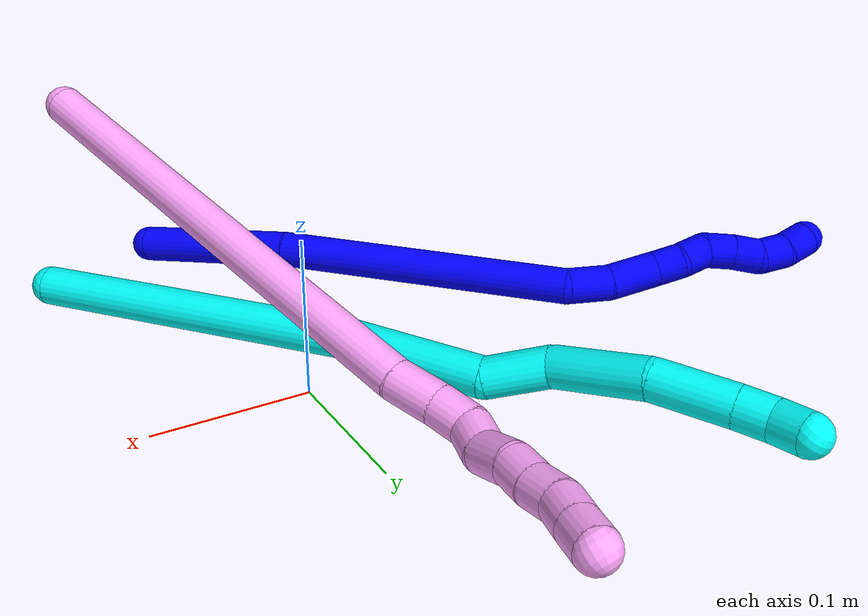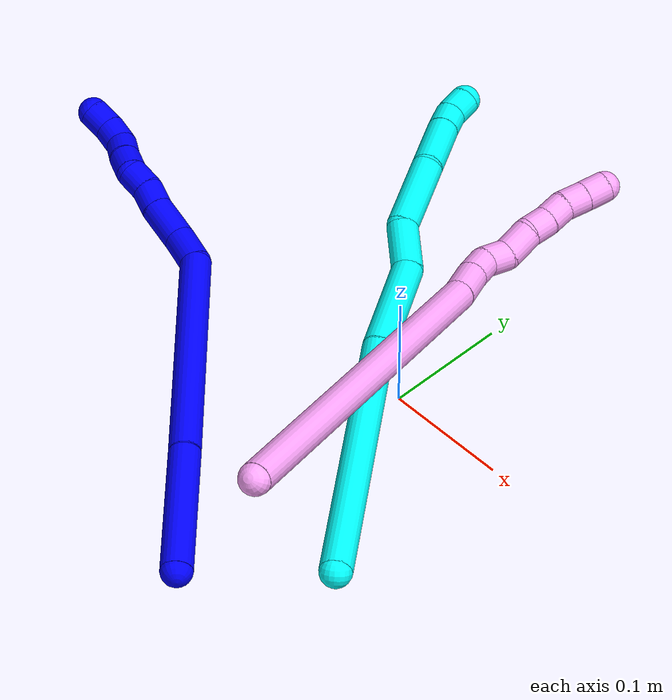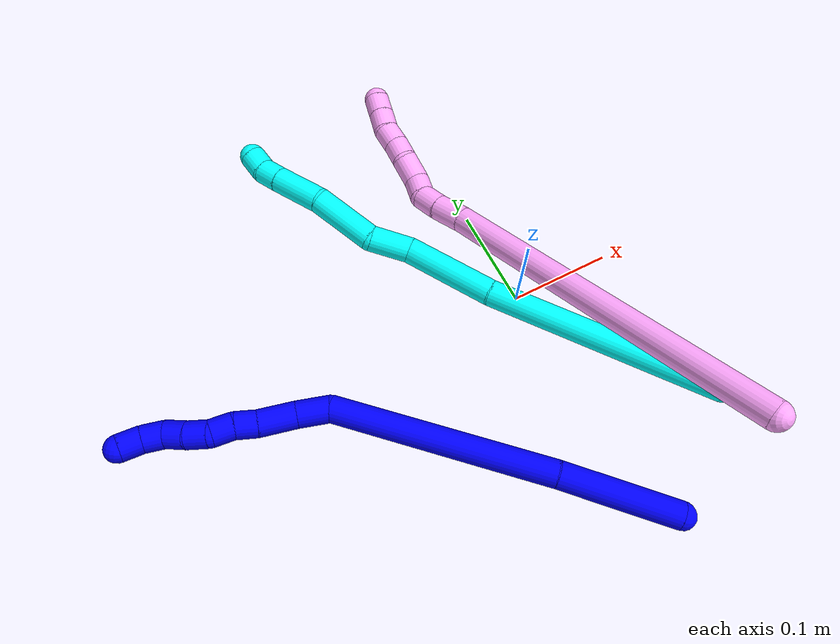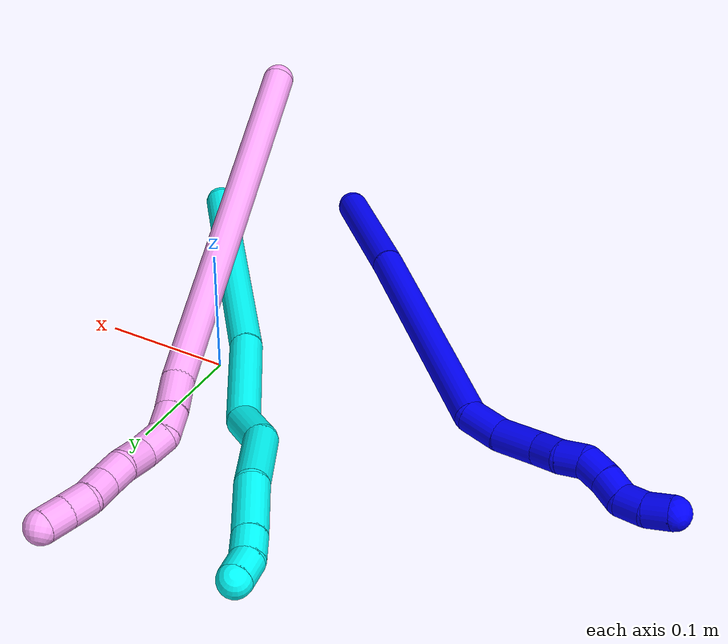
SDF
<sdf version="1.7">
 <world name="default">
  <model name="1">
   <static>0</static>
   <link name="1">
    <collision name="collision-cylinder-e_1_1_4">
     <pose>-0.006779 -0.004746 0.053372 0.088686 -0.125846 -0.005591</pose>
     <geometry><cylinder><radius>0.0125</radius><length>0.10802</length></cylinder></geometry>
     <surface>
      <friction><ode><mu>1.16</mu><mu2>1.16</mu2><slip1>0</slip1><slip2>0</slip2></ode></friction>
      <contact><ode><kp>1e+06</kp><kd>1</kd><max_vel>0</max_vel><min_depth>0.001</min_depth></ode></contact>
     </surface>
    </collision>
    <visual name="visual-cylinder-e_1_1_4">
     <pose>-0.006779 -0.004746 0.053372 0.088686 -0.125846 -0.005591</pose>
     <geometry><cylinder><radius>0.0125</radius><length>0.10802</length></cylinder></geometry>
     <material><ambient>0 0 1 1</ambient></material>
    </visual>
    <collision name="collision-cylinder-e_2_4_5">
     <pose>-0.016339 -0.016219 0.209238 0.065539 -0.027069 -0.000887</pose>
     <geometry><cylinder><radius>0.0125</radius><length>0.205503</length></cylinder></geometry>
     <surface>
      <friction><ode><mu>1.16</mu><mu2>1.16</mu2><slip1>0</slip1><slip2>0</slip2></ode></friction>
      <contact><ode><kp>1e+06</kp><kd>1</kd><max_vel>0</max_vel><min_depth>0.001</min_depth></ode></contact>
     </surface>
    </collision>
    <visual name="visual-cylinder-e_2_4_5">
     <pose>-0.016339 -0.016219 0.209238 0.065539 -0.027069 -0.000887</pose>
     <geometry><cylinder><radius>0.0125</radius><length>0.205503</length></cylinder></geometry>
     <material><ambient>0 0 1 1</ambient></material>
    </visual>
    <collision name="collision-cylinder-e_3_5_6">
     <pose>-0.020133 -0.017 0.3258 -0.399866 -0.066256 0.013431</pose>
     <geometry><cylinder><radius>0.0125</radius><length>0.030614</length></cylinder></geometry>
     <surface>
      <friction><ode><mu>1.16</mu><mu2>1.16</mu2><slip1>0</slip1><slip2>0</slip2></ode></friction>
      <contact><ode><kp>1e+06</kp><kd>1</kd><max_vel>0</max_vel><min_depth>0.001</min_depth></ode></contact>
     </surface>
    </collision>
    <visual name="visual-cylinder-e_3_5_6">
     <pose>-0.020133 -0.017 0.3258 -0.399866 -0.066256 0.013431</pose>
     <geometry><cylinder><radius>0.0125</radius><length>0.030614</length></cylinder></geometry>
     <material><ambient>0 0 1 1</ambient></material>
    </visual>
    <collision name="collision-cylinder-e_4_6_7">
     <pose>-0.025167 -0.002764 0.354749 -0.508243 -0.231746 0.060445</pose>
     <geometry><cylinder><radius>0.0125</radius><length>0.035004</length></cylinder></geometry>
     <surface>
      <friction><ode><mu>1.16</mu><mu2>1.16</mu2><slip1>0</slip1><slip2>0</slip2></ode></friction>
      <contact><ode><kp>1e+06</kp><kd>1</kd><max_vel>0</max_vel><min_depth>0.001</min_depth></ode></contact>
     </surface>
    </collision>
    <visual name="visual-cylinder-e_4_6_7">
     <pose>-0.025167 -0.002764 0.354749 -0.508243 -0.231746 0.060445</pose>
     <geometry><cylinder><radius>0.0125</radius><length>0.035004</length></cylinder></geometry>
     <material><ambient>0 0 1 1</ambient></material>
    </visual>
    <collision name="collision-cylinder-e_5_7_8">
     <pose>-0.032319 0.009034 0.378595 -0.373022 -0.314532 0.05983</pose>
     <geometry><cylinder><radius>0.0125</radius><length>0.020247</length></cylinder></geometry>
     <surface>
      <friction><ode><mu>1.16</mu><mu2>1.16</mu2><slip1>0</slip1><slip2>0</slip2></ode></friction>
      <contact><ode><kp>1e+06</kp><kd>1</kd><max_vel>0</max_vel><min_depth>0.001</min_depth></ode></contact>
     </surface>
    </collision>
    <visual name="visual-cylinder-e_5_7_8">
     <pose>-0.032319 0.009034 0.378595 -0.373022 -0.314532 0.05983</pose>
     <geometry><cylinder><radius>0.0125</radius><length>0.020247</length></cylinder></geometry>
     <material><ambient>0 0 1 1</ambient></material>
    </visual>
    <collision name="collision-cylinder-e_6_8_9">
     <pose>-0.038325 0.018417 0.395248 -0.652564 -0.288819 0.098335</pose>
     <geometry><cylinder><radius>0.0125</radius><length>0.020188</length></cylinder></geometry>
     <surface>
      <friction><ode><mu>1.16</mu><mu2>1.16</mu2><slip1>0</slip1><slip2>0</slip2></ode></friction>
      <contact><ode><kp>1e+06</kp><kd>1</kd><max_vel>0</max_vel><min_depth>0.001</min_depth></ode></contact>
     </surface>
    </collision>
    <visual name="visual-cylinder-e_6_8_9">
     <pose>-0.038325 0.018417 0.395248 -0.652564 -0.288819 0.098335</pose>
     <geometry><cylinder><radius>0.0125</radius><length>0.020188</length></cylinder></geometry>
     <material><ambient>0 0 1 1</ambient></material>
    </visual>
    <collision name="collision-cylinder-e_7_9_10">
     <pose>-0.040935 0.026974 0.412779 -0.265887 0.026063 -0.003486</pose>
     <geometry><cylinder><radius>0.0125</radius><length>0.020411</length></cylinder></geometry>
     <surface>
      <friction><ode><mu>1.16</mu><mu2>1.16</mu2><slip1>0</slip1><slip2>0</slip2></ode></friction>
      <contact><ode><kp>1e+06</kp><kd>1</kd><max_vel>0</max_vel><min_depth>0.001</min_depth></ode></contact>
     </surface>
    </collision>
    <visual name="visual-cylinder-e_7_9_10">
     <pose>-0.040935 0.026974 0.412779 -0.265887 0.026063 -0.003486</pose>
     <geometry><cylinder><radius>0.0125</radius><length>0.020411</length></cylinder></geometry>
     <material><ambient>0 0 1 1</ambient></material>
    </visual>
    <collision name="collision-cylinder-e_8_10_11">
     <pose>-0.039665 0.031046 0.432481 -0.140242 0.100452 -0.007061</pose>
     <geometry><cylinder><radius>0.0125</radius><length>0.020012</length></cylinder></geometry>
     <surface>
      <friction><ode><mu>1.16</mu><mu2>1.16</mu2><slip1>0</slip1><slip2>0</slip2></ode></friction>
      <contact><ode><kp>1e+06</kp><kd>1</kd><max_vel>0</max_vel><min_depth>0.001</min_depth></ode></contact>
     </surface>
    </collision>
    <visual name="visual-cylinder-e_8_10_11">
     <pose>-0.039665 0.031046 0.432481 -0.140242 0.100452 -0.007061</pose>
     <geometry><cylinder><radius>0.0125</radius><length>0.020012</length></cylinder></geometry>
     <material><ambient>0 0 1 1</ambient></material>
    </visual>
    <collision name="collision-cylinder-e_9_11_12">
     <pose>-0.040594 0.037038 0.451005 -0.488063 -0.1945 0.048573</pose>
     <geometry><cylinder><radius>0.0125</radius><length>0.02</length></cylinder></geometry>
     <surface>
      <friction><ode><mu>1.16</mu><mu2>1.16</mu2><slip1>0</slip1><slip2>0</slip2></ode></friction>
      <contact><ode><kp>1e+06</kp><kd>1</kd><max_vel>0</max_vel><min_depth>0.001</min_depth></ode></contact>
     </surface>
    </collision>
    <visual name="visual-cylinder-e_9_11_12">
     <pose>-0.040594 0.037038 0.451005 -0.488063 -0.1945 0.048573</pose>
     <geometry><cylinder><radius>0.0125</radius><length>0.02</length></cylinder></geometry>
     <material><ambient>0 0 1 1</ambient></material>
    </visual>
    <collision name="collision-cylinder-e_10_12_2">
     <pose>-0.045834 0.04784 0.466785 -0.716867 -0.336978 0.127273</pose>
     <geometry><cylinder><radius>0.0125</radius><length>0.020001</length></cylinder></geometry>
     <surface>
      <friction><ode><mu>1.16</mu><mu2>1.16</mu2><slip1>0</slip1><slip2>0</slip2></ode></friction>
      <contact><ode><kp>1e+06</kp><kd>1</kd><max_vel>0</max_vel><min_depth>0.001</min_depth></ode></contact>
     </surface>
    </collision>
    <visual name="visual-cylinder-e_10_12_2">
     <pose>-0.045834 0.04784 0.466785 -0.716867 -0.336978 0.127273</pose>
     <geometry><cylinder><radius>0.0125</radius><length>0.020001</length></cylinder></geometry>
     <material><ambient>0 0 1 1</ambient></material>
    </visual>
    <collision name="collision-sphere-2">
     <pose>-0.04914 0.054041 0.4739 0 -0 0</pose>
     <geometry><sphere><radius>0.0125</radius></sphere></geometry>
     <surface>
      <friction><ode><mu>1.16</mu><mu2>1.16</mu2><slip1>0</slip1><slip2>0</slip2></ode></friction>
      <contact><ode><kp>1e+06</kp><kd>1</kd><max_vel>0</max_vel><min_depth>0.001</min_depth></ode></contact>
     </surface>
    </collision>
    <visual name="visual-sphere-2">
     <pose>-0.04914 0.054041 0.4739 0 -0 0</pose>
     <geometry><sphere><radius>0.0125</radius></sphere></geometry>
     <material><ambient>0 0 1 1</ambient></material>
    </visual>
    <collision name="collision-sphere-12">
     <pose>-0.042527 0.041639 0.459671 0 -0 0</pose>
     <geometry><sphere><radius>0.0125</radius></sphere></geometry>
     <surface>
      <friction><ode><mu>1.16</mu><mu2>1.16</mu2><slip1>0</slip1><slip2>0</slip2></ode></friction>
      <contact><ode><kp>1e+06</kp><kd>1</kd><max_vel>0</max_vel><min_depth>0.001</min_depth></ode></contact>
     </surface>
    </collision>
    <visual name="visual-sphere-12">
     <pose>-0.042527 0.041639 0.459671 0 -0 0</pose>
     <geometry><sphere><radius>0.0125</radius></sphere></geometry>
     <material><ambient>0 0 1 1</ambient></material>
    </visual>
    <collision name="collision-sphere-11">
     <pose>-0.038662 0.032438 0.442339 0 -0 0</pose>
     <geometry><sphere><radius>0.0125</radius></sphere></geometry>
     <surface>
      <friction><ode><mu>1.16</mu><mu2>1.16</mu2><slip1>0</slip1><slip2>0</slip2></ode></friction>
      <contact><ode><kp>1e+06</kp><kd>1</kd><max_vel>0</max_vel><min_depth>0.001</min_depth></ode></contact>
     </surface>
    </collision>
    <visual name="visual-sphere-11">
     <pose>-0.038662 0.032438 0.442339 0 -0 0</pose>
     <geometry><sphere><radius>0.0125</radius></sphere></geometry>
     <material><ambient>0 0 1 1</ambient></material>
    </visual>
    <collision name="collision-sphere-10">
     <pose>-0.040669 0.029654 0.422623 0 -0 0</pose>
     <geometry><sphere><radius>0.0125</radius></sphere></geometry>
     <surface>
      <friction><ode><mu>1.16</mu><mu2>1.16</mu2><slip1>0</slip1><slip2>0</slip2></ode></friction>
      <contact><ode><kp>1e+06</kp><kd>1</kd><max_vel>0</max_vel><min_depth>0.001</min_depth></ode></contact>
     </surface>
    </collision>
    <visual name="visual-sphere-10">
     <pose>-0.040669 0.029654 0.422623 0 -0 0</pose>
     <geometry><sphere><radius>0.0125</radius></sphere></geometry>
     <material><ambient>0 0 1 1</ambient></material>
    </visual>
    <collision name="collision-sphere-9">
     <pose>-0.0412 0.024293 0.402936 0 -0 0</pose>
     <geometry><sphere><radius>0.0125</radius></sphere></geometry>
     <surface>
      <friction><ode><mu>1.16</mu><mu2>1.16</mu2><slip1>0</slip1><slip2>0</slip2></ode></friction>
      <contact><ode><kp>1e+06</kp><kd>1</kd><max_vel>0</max_vel><min_depth>0.001</min_depth></ode></contact>
     </surface>
    </collision>
    <visual name="visual-sphere-9">
     <pose>-0.0412 0.024293 0.402936 0 -0 0</pose>
     <geometry><sphere><radius>0.0125</radius></sphere></geometry>
     <material><ambient>0 0 1 1</ambient></material>
    </visual>
    <collision name="collision-sphere-4">
     <pose>-0.013558 -0.009492 0.106745 0 -0 0</pose>
     <geometry><sphere><radius>0.0125</radius></sphere></geometry>
     <surface>
      <friction><ode><mu>1.16</mu><mu2>1.16</mu2><slip1>0</slip1><slip2>0</slip2></ode></friction>
      <contact><ode><kp>1e+06</kp><kd>1</kd><max_vel>0</max_vel><min_depth>0.001</min_depth></ode></contact>
     </surface>
    </collision>
    <visual name="visual-sphere-4">
     <pose>-0.013558 -0.009492 0.106745 0 -0 0</pose>
     <geometry><sphere><radius>0.0125</radius></sphere></geometry>
     <material><ambient>0 0 1 1</ambient></material>
    </visual>
    <collision name="collision-sphere-1">
     <geometry><sphere><radius>0.0125</radius></sphere></geometry>
     <surface>
      <friction><ode><mu>1.16</mu><mu2>1.16</mu2><slip1>0</slip1><slip2>0</slip2></ode></friction>
      <contact><ode><kp>1e+06</kp><kd>1</kd><max_vel>0</max_vel><min_depth>0.001</min_depth></ode></contact>
     </surface>
    </collision>
    <visual name="visual-sphere-1">
     <geometry><sphere><radius>0.0125</radius></sphere></geometry>
     <material><ambient>0 0 1 1</ambient></material>
    </visual>
    <collision name="collision-sphere-8">
     <pose>-0.035451 0.012542 0.38756 0 -0 0</pose>
     <geometry><sphere><radius>0.0125</radius></sphere></geometry>
     <surface>
      <friction><ode><mu>1.16</mu><mu2>1.16</mu2><slip1>0</slip1><slip2>0</slip2></ode></friction>
      <contact><ode><kp>1e+06</kp><kd>1</kd><max_vel>0</max_vel><min_depth>0.001</min_depth></ode></contact>
     </surface>
    </collision>
    <visual name="visual-sphere-8">
     <pose>-0.035451 0.012542 0.38756 0 -0 0</pose>
     <geometry><sphere><radius>0.0125</radius></sphere></geometry>
     <material><ambient>0 0 1 1</ambient></material>
    </visual>
    <collision name="collision-sphere-5">
     <pose>-0.01912 -0.022946 0.311731 0 -0 0</pose>
     <geometry><sphere><radius>0.0125</radius></sphere></geometry>
     <surface>
      <friction><ode><mu>1.16</mu><mu2>1.16</mu2><slip1>0</slip1><slip2>0</slip2></ode></friction>
      <contact><ode><kp>1e+06</kp><kd>1</kd><max_vel>0</max_vel><min_depth>0.001</min_depth></ode></contact>
     </surface>
    </collision>
    <visual name="visual-sphere-5">
     <pose>-0.01912 -0.022946 0.311731 0 -0 0</pose>
     <geometry><sphere><radius>0.0125</radius></sphere></geometry>
     <material><ambient>0 0 1 1</ambient></material>
    </visual>
    <collision name="collision-sphere-6">
     <pose>-0.021147 -0.011054 0.339868 0 -0 0</pose>
     <geometry><sphere><radius>0.0125</radius></sphere></geometry>
     <surface>
      <friction><ode><mu>1.16</mu><mu2>1.16</mu2><slip1>0</slip1><slip2>0</slip2></ode></friction>
      <contact><ode><kp>1e+06</kp><kd>1</kd><max_vel>0</max_vel><min_depth>0.001</min_depth></ode></contact>
     </surface>
    </collision>
    <visual name="visual-sphere-6">
     <pose>-0.021147 -0.011054 0.339868 0 -0 0</pose>
     <geometry><sphere><radius>0.0125</radius></sphere></geometry>
     <material><ambient>0 0 1 1</ambient></material>
    </visual>
    <collision name="collision-sphere-7">
     <pose>-0.029187 0.005525 0.36963 0 -0 0</pose>
     <geometry><sphere><radius>0.0125</radius></sphere></geometry>
     <surface>
      <friction><ode><mu>1.16</mu><mu2>1.16</mu2><slip1>0</slip1><slip2>0</slip2></ode></friction>
      <contact><ode><kp>1e+06</kp><kd>1</kd><max_vel>0</max_vel><min_depth>0.001</min_depth></ode></contact>
     </surface>
    </collision>
    <visual name="visual-sphere-7">
     <pose>-0.029187 0.005525 0.36963 0 -0 0</pose>
     <geometry><sphere><radius>0.0125</radius></sphere></geometry>
     <material><ambient>0 0 1 1</ambient></material>
    </visual>
    <inertial>
     <pose>-0.020747 -0.002077 0.244474 0 -0 0</pose>
     <mass>0.5</mass>
     <inertia>
      <ixx>0.000852</ixx>
      <ixy>0</ixy>
      <ixz>0</ixz>
      <iyy>0.000858</iyy>
      <iyz>0</iyz>
      <izz>0.000124</izz>
     </inertia>
    </inertial>
   </link>
   <pose>0.018881 -0.241973 0.011734 -2.35591 1.48306 0.084673</pose>
  </model>
  <model name="3">
   <static>0</static>
   <link name="3">
    <collision name="collision-cylinder-e_1_1_4">
     <pose>-0.093551 -0.005721 -0.058651 3.04435 -1.00867 -2.96573</pose>
     <geometry><cylinder><radius>0.0125</radius><length>0.221128</length></cylinder></geometry>
     <surface>
      <friction><ode><mu>1.16</mu><mu2>1.16</mu2><slip1>0</slip1><slip2>0</slip2></ode></friction>
      <contact><ode><kp>1e+06</kp><kd>1</kd><max_vel>0</max_vel><min_depth>0.001</min_depth></ode></contact>
     </surface>
    </collision>
    <visual name="visual-cylinder-e_1_1_4">
     <pose>-0.093551 -0.005721 -0.058651 3.04435 -1.00867 -2.96573</pose>
     <geometry><cylinder><radius>0.0125</radius><length>0.221128</length></cylinder></geometry>
     <material><ambient>0.003922 1 0.996078 1</ambient></material>
    </visual>
    <collision name="collision-cylinder-e_2_4_5">
     <pose>-0.224788 -0.019052 -0.139208 2.80728 -1.01917 -2.55512</pose>
     <geometry><cylinder><radius>0.0125</radius><length>0.088499</length></cylinder></geometry>
     <surface>
      <friction><ode><mu>1.16</mu><mu2>1.16</mu2><slip1>0</slip1><slip2>0</slip2></ode></friction>
      <contact><ode><kp>1e+06</kp><kd>1</kd><max_vel>0</max_vel><min_depth>0.001</min_depth></ode></contact>
     </surface>
    </collision>
    <visual name="visual-cylinder-e_2_4_5">
     <pose>-0.224788 -0.019052 -0.139208 2.80728 -1.01917 -2.55512</pose>
     <geometry><cylinder><radius>0.0125</radius><length>0.088499</length></cylinder></geometry>
     <material><ambient>0.003922 1 0.996078 1</ambient></material>
    </visual>
    <collision name="collision-cylinder-e_3_5_6">
     <pose>-0.275863 -0.023002 -0.175376 -2.89048 -0.737938 2.51056</pose>
     <geometry><cylinder><radius>0.0125</radius><length>0.039803</length></cylinder></geometry>
     <surface>
      <friction><ode><mu>1.16</mu><mu2>1.16</mu2><slip1>0</slip1><slip2>0</slip2></ode></friction>
      <contact><ode><kp>1e+06</kp><kd>1</kd><max_vel>0</max_vel><min_depth>0.001</min_depth></ode></contact>
     </surface>
    </collision>
    <visual name="visual-cylinder-e_3_5_6">
     <pose>-0.275863 -0.023002 -0.175376 -2.89048 -0.737938 2.51056</pose>
     <geometry><cylinder><radius>0.0125</radius><length>0.039803</length></cylinder></geometry>
     <material><ambient>0.003922 1 0.996078 1</ambient></material>
    </visual>
    <collision name="collision-cylinder-e_4_6_7">
     <pose>-0.311403 -0.026699 -0.209423 2.78562 -0.809528 -2.34652</pose>
     <geometry><cylinder><radius>0.0125</radius><length>0.061195</length></cylinder></geometry>
     <surface>
      <friction><ode><mu>1.16</mu><mu2>1.16</mu2><slip1>0</slip1><slip2>0</slip2></ode></friction>
      <contact><ode><kp>1e+06</kp><kd>1</kd><max_vel>0</max_vel><min_depth>0.001</min_depth></ode></contact>
     </surface>
    </collision>
    <visual name="visual-cylinder-e_4_6_7">
     <pose>-0.311403 -0.026699 -0.209423 2.78562 -0.809528 -2.34652</pose>
     <geometry><cylinder><radius>0.0125</radius><length>0.061195</length></cylinder></geometry>
     <material><ambient>0.003922 1 0.996078 1</ambient></material>
    </visual>
    <collision name="collision-cylinder-e_5_7_8">
     <pose>-0.354479 -0.038504 -0.240215 2.75755 -1.05465 -2.49715</pose>
     <geometry><cylinder><radius>0.0125</radius><length>0.048117</length></cylinder></geometry>
     <surface>
      <friction><ode><mu>1.16</mu><mu2>1.16</mu2><slip1>0</slip1><slip2>0</slip2></ode></friction>
      <contact><ode><kp>1e+06</kp><kd>1</kd><max_vel>0</max_vel><min_depth>0.001</min_depth></ode></contact>
     </surface>
    </collision>
    <visual name="visual-cylinder-e_5_7_8">
     <pose>-0.354479 -0.038504 -0.240215 2.75755 -1.05465 -2.49715</pose>
     <geometry><cylinder><radius>0.0125</radius><length>0.048117</length></cylinder></geometry>
     <material><ambient>0.003922 1 0.996078 1</ambient></material>
    </visual>
    <collision name="collision-cylinder-e_6_8_9">
     <pose>-0.384519 -0.045339 -0.255811 2.6619 -1.05482 -2.34655</pose>
     <geometry><cylinder><radius>0.0125</radius><length>0.020961</length></cylinder></geometry>
     <surface>
      <friction><ode><mu>1.16</mu><mu2>1.16</mu2><slip1>0</slip1><slip2>0</slip2></ode></friction>
      <contact><ode><kp>1e+06</kp><kd>1</kd><max_vel>0</max_vel><min_depth>0.001</min_depth></ode></contact>
     </surface>
    </collision>
    <visual name="visual-cylinder-e_6_8_9">
     <pose>-0.384519 -0.045339 -0.255811 2.6619 -1.05482 -2.34655</pose>
     <geometry><cylinder><radius>0.0125</radius><length>0.020961</length></cylinder></geometry>
     <material><ambient>0.003922 1 0.996078 1</ambient></material>
    </visual>
    <collision name="collision-cylinder-e_7_9_2">
     <pose>-0.40073 -0.052913 -0.265473 2.34523 -0.774147 -1.53937</pose>
     <geometry><cylinder><radius>0.0125</radius><length>0.020298</length></cylinder></geometry>
     <surface>
      <friction><ode><mu>1.16</mu><mu2>1.16</mu2><slip1>0</slip1><slip2>0</slip2></ode></friction>
      <contact><ode><kp>1e+06</kp><kd>1</kd><max_vel>0</max_vel><min_depth>0.001</min_depth></ode></contact>
     </surface>
    </collision>
    <visual name="visual-cylinder-e_7_9_2">
     <pose>-0.40073 -0.052913 -0.265473 2.34523 -0.774147 -1.53937</pose>
     <geometry><cylinder><radius>0.0125</radius><length>0.020298</length></cylinder></geometry>
     <material><ambient>0.003922 1 0.996078 1</ambient></material>
    </visual>
    <collision name="collision-sphere-2">
     <pose>-0.407825 -0.0581 -0.270548 0 -0 0</pose>
     <geometry><sphere><radius>0.0125</radius></sphere></geometry>
     <surface>
      <friction><ode><mu>1.16</mu><mu2>1.16</mu2><slip1>0</slip1><slip2>0</slip2></ode></friction>
      <contact><ode><kp>1e+06</kp><kd>1</kd><max_vel>0</max_vel><min_depth>0.001</min_depth></ode></contact>
     </surface>
    </collision>
    <visual name="visual-sphere-2">
     <pose>-0.407825 -0.0581 -0.270548 0 -0 0</pose>
     <geometry><sphere><radius>0.0125</radius></sphere></geometry>
     <material><ambient>0.003922 1 0.996078 1</ambient></material>
    </visual>
    <collision name="collision-sphere-9">
     <pose>-0.393635 -0.047725 -0.260399 0 -0 0</pose>
     <geometry><sphere><radius>0.0125</radius></sphere></geometry>
     <surface>
      <friction><ode><mu>1.16</mu><mu2>1.16</mu2><slip1>0</slip1><slip2>0</slip2></ode></friction>
      <contact><ode><kp>1e+06</kp><kd>1</kd><max_vel>0</max_vel><min_depth>0.001</min_depth></ode></contact>
     </surface>
    </collision>
    <visual name="visual-sphere-9">
     <pose>-0.393635 -0.047725 -0.260399 0 -0 0</pose>
     <geometry><sphere><radius>0.0125</radius></sphere></geometry>
     <material><ambient>0.003922 1 0.996078 1</ambient></material>
    </visual>
    <collision name="collision-sphere-4">
     <pose>-0.187101 -0.011443 -0.117301 0 -0 0</pose>
     <geometry><sphere><radius>0.0125</radius></sphere></geometry>
     <surface>
      <friction><ode><mu>1.16</mu><mu2>1.16</mu2><slip1>0</slip1><slip2>0</slip2></ode></friction>
      <contact><ode><kp>1e+06</kp><kd>1</kd><max_vel>0</max_vel><min_depth>0.001</min_depth></ode></contact>
     </surface>
    </collision>
    <visual name="visual-sphere-4">
     <pose>-0.187101 -0.011443 -0.117301 0 -0 0</pose>
     <geometry><sphere><radius>0.0125</radius></sphere></geometry>
     <material><ambient>0.003922 1 0.996078 1</ambient></material>
    </visual>
    <collision name="collision-sphere-1">
     <geometry><sphere><radius>0.0125</radius></sphere></geometry>
     <surface>
      <friction><ode><mu>1.16</mu><mu2>1.16</mu2><slip1>0</slip1><slip2>0</slip2></ode></friction>
      <contact><ode><kp>1e+06</kp><kd>1</kd><max_vel>0</max_vel><min_depth>0.001</min_depth></ode></contact>
     </surface>
    </collision>
    <visual name="visual-sphere-1">
     <geometry><sphere><radius>0.0125</radius></sphere></geometry>
     <material><ambient>0.003922 1 0.996078 1</ambient></material>
    </visual>
    <collision name="collision-sphere-8">
     <pose>-0.375403 -0.042953 -0.251224 0 -0 0</pose>
     <geometry><sphere><radius>0.0125</radius></sphere></geometry>
     <surface>
      <friction><ode><mu>1.16</mu><mu2>1.16</mu2><slip1>0</slip1><slip2>0</slip2></ode></friction>
      <contact><ode><kp>1e+06</kp><kd>1</kd><max_vel>0</max_vel><min_depth>0.001</min_depth></ode></contact>
     </surface>
    </collision>
    <visual name="visual-sphere-8">
     <pose>-0.375403 -0.042953 -0.251224 0 -0 0</pose>
     <geometry><sphere><radius>0.0125</radius></sphere></geometry>
     <material><ambient>0.003922 1 0.996078 1</ambient></material>
    </visual>
    <collision name="collision-sphere-5">
     <pose>-0.262474 -0.026661 -0.161114 0 -0 0</pose>
     <geometry><sphere><radius>0.0125</radius></sphere></geometry>
     <surface>
      <friction><ode><mu>1.16</mu><mu2>1.16</mu2><slip1>0</slip1><slip2>0</slip2></ode></friction>
      <contact><ode><kp>1e+06</kp><kd>1</kd><max_vel>0</max_vel><min_depth>0.001</min_depth></ode></contact>
     </surface>
    </collision>
    <visual name="visual-sphere-5">
     <pose>-0.262474 -0.026661 -0.161114 0 -0 0</pose>
     <geometry><sphere><radius>0.0125</radius></sphere></geometry>
     <material><ambient>0.003922 1 0.996078 1</ambient></material>
    </visual>
    <collision name="collision-sphere-6">
     <pose>-0.289252 -0.019344 -0.189639 0 -0 0</pose>
     <geometry><sphere><radius>0.0125</radius></sphere></geometry>
     <surface>
      <friction><ode><mu>1.16</mu><mu2>1.16</mu2><slip1>0</slip1><slip2>0</slip2></ode></friction>
      <contact><ode><kp>1e+06</kp><kd>1</kd><max_vel>0</max_vel><min_depth>0.001</min_depth></ode></contact>
     </surface>
    </collision>
    <visual name="visual-sphere-6">
     <pose>-0.289252 -0.019344 -0.189639 0 -0 0</pose>
     <geometry><sphere><radius>0.0125</radius></sphere></geometry>
     <material><ambient>0.003922 1 0.996078 1</ambient></material>
    </visual>
    <collision name="collision-sphere-7">
     <pose>-0.333554 -0.034055 -0.229207 0 -0 0</pose>
     <geometry><sphere><radius>0.0125</radius></sphere></geometry>
     <surface>
      <friction><ode><mu>1.16</mu><mu2>1.16</mu2><slip1>0</slip1><slip2>0</slip2></ode></friction>
      <contact><ode><kp>1e+06</kp><kd>1</kd><max_vel>0</max_vel><min_depth>0.001</min_depth></ode></contact>
     </surface>
    </collision>
    <visual name="visual-sphere-7">
     <pose>-0.333554 -0.034055 -0.229207 0 -0 0</pose>
     <geometry><sphere><radius>0.0125</radius></sphere></geometry>
     <material><ambient>0.003922 1 0.996078 1</ambient></material>
    </visual>
    <inertial>
     <pose>-0.207733 -0.018755 -0.134788 0 -0 0</pose>
     <mass>0.5</mass>
     <inertia>
      <ixx>-0.00067</ixx>
      <ixy>0</ixy>
      <ixz>0</ixz>
      <iyy>0.000879</iyy>
      <iyz>0</iyz>
      <izz>0.000898</izz>
     </inertia>
    </inertial>
   </link>
   <pose>0.108321 -0.168706 0.028461 3.12132 -0.547963 -0.841533</pose>
  </model>
  <model name="4">
   <static>0</static>
   <link name="4">
    <collision name="collision-cylinder-e_1_1_4">
     <pose>-0.004739 0.075698 -0.141115 -2.64923 -0.029583 0.117604</pose>
     <geometry><cylinder><radius>0.0125</radius><length>0.320413</length></cylinder></geometry>
     <surface>
      <friction><ode><mu>1.16</mu><mu2>1.16</mu2><slip1>0</slip1><slip2>0</slip2></ode></friction>
      <contact><ode><kp>1e+06</kp><kd>1</kd><max_vel>0</max_vel><min_depth>0.001</min_depth></ode></contact>
     </surface>
    </collision>
    <visual name="visual-cylinder-e_1_1_4">
     <pose>-0.004739 0.075698 -0.141115 -2.64923 -0.029583 0.117604</pose>
     <geometry><cylinder><radius>0.0125</radius><length>0.320413</length></cylinder></geometry>
     <material><ambient>1 0.65098 0.996078 1</ambient></material>
    </visual>
    <collision name="collision-cylinder-e_2_4_5">
     <pose>-0.01165 0.159292 -0.294547 -2.57149 -0.147395 0.49364</pose>
     <geometry><cylinder><radius>0.0125</radius><length>0.029581</length></cylinder></geometry>
     <surface>
      <friction><ode><mu>1.16</mu><mu2>1.16</mu2><slip1>0</slip1><slip2>0</slip2></ode></friction>
      <contact><ode><kp>1e+06</kp><kd>1</kd><max_vel>0</max_vel><min_depth>0.001</min_depth></ode></contact>
     </surface>
    </collision>
    <visual name="visual-cylinder-e_2_4_5">
     <pose>-0.01165 0.159292 -0.294547 -2.57149 -0.147395 0.49364</pose>
     <geometry><cylinder><radius>0.0125</radius><length>0.029581</length></cylinder></geometry>
     <material><ambient>1 0.65098 0.996078 1</ambient></material>
    </visual>
    <collision name="collision-cylinder-e_3_5_6">
     <pose>-0.01441 0.173381 -0.316309 -2.56123 -0.052049 0.173905</pose>
     <geometry><cylinder><radius>0.0125</radius><length>0.022622</length></cylinder></geometry>
     <surface>
      <friction><ode><mu>1.16</mu><mu2>1.16</mu2><slip1>0</slip1><slip2>0</slip2></ode></friction>
      <contact><ode><kp>1e+06</kp><kd>1</kd><max_vel>0</max_vel><min_depth>0.001</min_depth></ode></contact>
     </surface>
    </collision>
    <visual name="visual-cylinder-e_3_5_6">
     <pose>-0.01441 0.173381 -0.316309 -2.56123 -0.052049 0.173905</pose>
     <geometry><cylinder><radius>0.0125</radius><length>0.022622</length></cylinder></geometry>
     <material><ambient>1 0.65098 0.996078 1</ambient></material>
    </visual>
    <collision name="collision-cylinder-e_4_6_7">
     <pose>-0.010231 0.185006 -0.333589 -2.53538 0.463744 -1.29338</pose>
     <geometry><cylinder><radius>0.0125</radius><length>0.021316</length></cylinder></geometry>
     <surface>
      <friction><ode><mu>1.16</mu><mu2>1.16</mu2><slip1>0</slip1><slip2>0</slip2></ode></friction>
      <contact><ode><kp>1e+06</kp><kd>1</kd><max_vel>0</max_vel><min_depth>0.001</min_depth></ode></contact>
     </surface>
    </collision>
    <visual name="visual-cylinder-e_4_6_7">
     <pose>-0.010231 0.185006 -0.333589 -2.53538 0.463744 -1.29338</pose>
     <geometry><cylinder><radius>0.0125</radius><length>0.021316</length></cylinder></geometry>
     <material><ambient>1 0.65098 0.996078 1</ambient></material>
    </visual>
    <collision name="collision-cylinder-e_5_7_8">
     <pose>-0.002411 0.201306 -0.347907 -2.10865 0.236683 -0.412772</pose>
     <geometry><cylinder><radius>0.0125</radius><length>0.026037</length></cylinder></geometry>
     <surface>
      <friction><ode><mu>1.16</mu><mu2>1.16</mu2><slip1>0</slip1><slip2>0</slip2></ode></friction>
      <contact><ode><kp>1e+06</kp><kd>1</kd><max_vel>0</max_vel><min_depth>0.001</min_depth></ode></contact>
     </surface>
    </collision>
    <visual name="visual-cylinder-e_5_7_8">
     <pose>-0.002411 0.201306 -0.347907 -2.10865 0.236683 -0.412772</pose>
     <geometry><cylinder><radius>0.0125</radius><length>0.026037</length></cylinder></geometry>
     <material><ambient>1 0.65098 0.996078 1</ambient></material>
    </visual>
    <collision name="collision-cylinder-e_6_8_9">
     <pose>0.003715 0.218659 -0.361358 -2.39217 0.312383 -0.761699</pose>
     <geometry><cylinder><radius>0.0125</radius><length>0.020006</length></cylinder></geometry>
     <surface>
      <friction><ode><mu>1.16</mu><mu2>1.16</mu2><slip1>0</slip1><slip2>0</slip2></ode></friction>
      <contact><ode><kp>1e+06</kp><kd>1</kd><max_vel>0</max_vel><min_depth>0.001</min_depth></ode></contact>
     </surface>
    </collision>
    <visual name="visual-cylinder-e_6_8_9">
     <pose>0.003715 0.218659 -0.361358 -2.39217 0.312383 -0.761699</pose>
     <geometry><cylinder><radius>0.0125</radius><length>0.020006</length></cylinder></geometry>
     <material><ambient>1 0.65098 0.996078 1</ambient></material>
    </visual>
    <collision name="collision-cylinder-e_7_9_10">
     <pose>0.008849 0.232592 -0.374685 -2.27739 0.207265 -0.44363</pose>
     <geometry><cylinder><radius>0.0125</radius><length>0.020016</length></cylinder></geometry>
     <surface>
      <friction><ode><mu>1.16</mu><mu2>1.16</mu2><slip1>0</slip1><slip2>0</slip2></ode></friction>
      <contact><ode><kp>1e+06</kp><kd>1</kd><max_vel>0</max_vel><min_depth>0.001</min_depth></ode></contact>
     </surface>
    </collision>
    <visual name="visual-cylinder-e_7_9_10">
     <pose>0.008849 0.232592 -0.374685 -2.27739 0.207265 -0.44363</pose>
     <geometry><cylinder><radius>0.0125</radius><length>0.020016</length></cylinder></geometry>
     <material><ambient>1 0.65098 0.996078 1</ambient></material>
    </visual>
    <collision name="collision-cylinder-e_8_10_11">
     <pose>0.015637 0.246275 -0.387276 -2.356 0.492375 -1.09035</pose>
     <geometry><cylinder><radius>0.0125</radius><length>0.020005</length></cylinder></geometry>
     <surface>
      <friction><ode><mu>1.16</mu><mu2>1.16</mu2><slip1>0</slip1><slip2>0</slip2></ode></friction>
      <contact><ode><kp>1e+06</kp><kd>1</kd><max_vel>0</max_vel><min_depth>0.001</min_depth></ode></contact>
     </surface>
    </collision>
    <visual name="visual-cylinder-e_8_10_11">
     <pose>0.015637 0.246275 -0.387276 -2.356 0.492375 -1.09035</pose>
     <geometry><cylinder><radius>0.0125</radius><length>0.020005</length></cylinder></geometry>
     <material><ambient>1 0.65098 0.996078 1</ambient></material>
    </visual>
    <collision name="collision-cylinder-e_9_11_2">
     <pose>0.025 0.258991 -0.399554 -2.3215 0.481731 -1.0287</pose>
     <geometry><cylinder><radius>0.0125</radius><length>0.020004</length></cylinder></geometry>
     <surface>
      <friction><ode><mu>1.16</mu><mu2>1.16</mu2><slip1>0</slip1><slip2>0</slip2></ode></friction>
      <contact><ode><kp>1e+06</kp><kd>1</kd><max_vel>0</max_vel><min_depth>0.001</min_depth></ode></contact>
     </surface>
    </collision>
    <visual name="visual-cylinder-e_9_11_2">
     <pose>0.025 0.258991 -0.399554 -2.3215 0.481731 -1.0287</pose>
     <geometry><cylinder><radius>0.0125</radius><length>0.020004</length></cylinder></geometry>
     <material><ambient>1 0.65098 0.996078 1</ambient></material>
    </visual>
    <collision name="collision-sphere-2">
     <pose>0.029634 0.265472 -0.4056 0 -0 0</pose>
     <geometry><sphere><radius>0.0125</radius></sphere></geometry>
     <surface>
      <friction><ode><mu>1.16</mu><mu2>1.16</mu2><slip1>0</slip1><slip2>0</slip2></ode></friction>
      <contact><ode><kp>1e+06</kp><kd>1</kd><max_vel>0</max_vel><min_depth>0.001</min_depth></ode></contact>
     </surface>
    </collision>
    <visual name="visual-sphere-2">
     <pose>0.029634 0.265472 -0.4056 0 -0 0</pose>
     <geometry><sphere><radius>0.0125</radius></sphere></geometry>
     <material><ambient>1 0.65098 0.996078 1</ambient></material>
    </visual>
    <collision name="collision-sphere-11">
     <pose>0.020366 0.252509 -0.393507 0 -0 0</pose>
     <geometry><sphere><radius>0.0125</radius></sphere></geometry>
     <surface>
      <friction><ode><mu>1.16</mu><mu2>1.16</mu2><slip1>0</slip1><slip2>0</slip2></ode></friction>
      <contact><ode><kp>1e+06</kp><kd>1</kd><max_vel>0</max_vel><min_depth>0.001</min_depth></ode></contact>
     </surface>
    </collision>
    <visual name="visual-sphere-11">
     <pose>0.020366 0.252509 -0.393507 0 -0 0</pose>
     <geometry><sphere><radius>0.0125</radius></sphere></geometry>
     <material><ambient>1 0.65098 0.996078 1</ambient></material>
    </visual>
    <collision name="collision-sphere-10">
     <pose>0.010909 0.240041 -0.381044 0 -0 0</pose>
     <geometry><sphere><radius>0.0125</radius></sphere></geometry>
     <surface>
      <friction><ode><mu>1.16</mu><mu2>1.16</mu2><slip1>0</slip1><slip2>0</slip2></ode></friction>
      <contact><ode><kp>1e+06</kp><kd>1</kd><max_vel>0</max_vel><min_depth>0.001</min_depth></ode></contact>
     </surface>
    </collision>
    <visual name="visual-sphere-10">
     <pose>0.010909 0.240041 -0.381044 0 -0 0</pose>
     <geometry><sphere><radius>0.0125</radius></sphere></geometry>
     <material><ambient>1 0.65098 0.996078 1</ambient></material>
    </visual>
    <collision name="collision-sphere-9">
     <pose>0.00679 0.225144 -0.368327 0 -0 0</pose>
     <geometry><sphere><radius>0.0125</radius></sphere></geometry>
     <surface>
      <friction><ode><mu>1.16</mu><mu2>1.16</mu2><slip1>0</slip1><slip2>0</slip2></ode></friction>
      <contact><ode><kp>1e+06</kp><kd>1</kd><max_vel>0</max_vel><min_depth>0.001</min_depth></ode></contact>
     </surface>
    </collision>
    <visual name="visual-sphere-9">
     <pose>0.00679 0.225144 -0.368327 0 -0 0</pose>
     <geometry><sphere><radius>0.0125</radius></sphere></geometry>
     <material><ambient>1 0.65098 0.996078 1</ambient></material>
    </visual>
    <collision name="collision-sphere-4">
     <pose>-0.009477 0.151395 -0.282231 0 -0 0</pose>
     <geometry><sphere><radius>0.0125</radius></sphere></geometry>
     <surface>
      <friction><ode><mu>1.16</mu><mu2>1.16</mu2><slip1>0</slip1><slip2>0</slip2></ode></friction>
      <contact><ode><kp>1e+06</kp><kd>1</kd><max_vel>0</max_vel><min_depth>0.001</min_depth></ode></contact>
     </surface>
    </collision>
    <visual name="visual-sphere-4">
     <pose>-0.009477 0.151395 -0.282231 0 -0 0</pose>
     <geometry><sphere><radius>0.0125</radius></sphere></geometry>
     <material><ambient>1 0.65098 0.996078 1</ambient></material>
    </visual>
    <collision name="collision-sphere-1">
     <geometry><sphere><radius>0.0125</radius></sphere></geometry>
     <surface>
      <friction><ode><mu>1.16</mu><mu2>1.16</mu2><slip1>0</slip1><slip2>0</slip2></ode></friction>
      <contact><ode><kp>1e+06</kp><kd>1</kd><max_vel>0</max_vel><min_depth>0.001</min_depth></ode></contact>
     </surface>
    </collision>
    <visual name="visual-sphere-1">
     <geometry><sphere><radius>0.0125</radius></sphere></geometry>
     <material><ambient>1 0.65098 0.996078 1</ambient></material>
    </visual>
    <collision name="collision-sphere-8">
     <pose>0.000641 0.212175 -0.35439 0 -0 0</pose>
     <geometry><sphere><radius>0.0125</radius></sphere></geometry>
     <surface>
      <friction><ode><mu>1.16</mu><mu2>1.16</mu2><slip1>0</slip1><slip2>0</slip2></ode></friction>
      <contact><ode><kp>1e+06</kp><kd>1</kd><max_vel>0</max_vel><min_depth>0.001</min_depth></ode></contact>
     </surface>
    </collision>
    <visual name="visual-sphere-8">
     <pose>0.000641 0.212175 -0.35439 0 -0 0</pose>
     <geometry><sphere><radius>0.0125</radius></sphere></geometry>
     <material><ambient>1 0.65098 0.996078 1</ambient></material>
    </visual>
    <collision name="collision-sphere-5">
     <pose>-0.013822 0.167188 -0.306863 0 -0 0</pose>
     <geometry><sphere><radius>0.0125</radius></sphere></geometry>
     <surface>
      <friction><ode><mu>1.16</mu><mu2>1.16</mu2><slip1>0</slip1><slip2>0</slip2></ode></friction>
      <contact><ode><kp>1e+06</kp><kd>1</kd><max_vel>0</max_vel><min_depth>0.001</min_depth></ode></contact>
     </surface>
    </collision>
    <visual name="visual-sphere-5">
     <pose>-0.013822 0.167188 -0.306863 0 -0 0</pose>
     <geometry><sphere><radius>0.0125</radius></sphere></geometry>
     <material><ambient>1 0.65098 0.996078 1</ambient></material>
    </visual>
    <collision name="collision-sphere-6">
     <pose>-0.014999 0.179575 -0.325755 0 -0 0</pose>
     <geometry><sphere><radius>0.0125</radius></sphere></geometry>
     <surface>
      <friction><ode><mu>1.16</mu><mu2>1.16</mu2><slip1>0</slip1><slip2>0</slip2></ode></friction>
      <contact><ode><kp>1e+06</kp><kd>1</kd><max_vel>0</max_vel><min_depth>0.001</min_depth></ode></contact>
     </surface>
    </collision>
    <visual name="visual-sphere-6">
     <pose>-0.014999 0.179575 -0.325755 0 -0 0</pose>
     <geometry><sphere><radius>0.0125</radius></sphere></geometry>
     <material><ambient>1 0.65098 0.996078 1</ambient></material>
    </visual>
    <collision name="collision-sphere-7">
     <pose>-0.005464 0.190438 -0.341423 0 -0 0</pose>
     <geometry><sphere><radius>0.0125</radius></sphere></geometry>
     <surface>
      <friction><ode><mu>1.16</mu><mu2>1.16</mu2><slip1>0</slip1><slip2>0</slip2></ode></friction>
      <contact><ode><kp>1e+06</kp><kd>1</kd><max_vel>0</max_vel><min_depth>0.001</min_depth></ode></contact>
     </surface>
    </collision>
    <visual name="visual-sphere-7">
     <pose>-0.005464 0.190438 -0.341423 0 -0 0</pose>
     <geometry><sphere><radius>0.0125</radius></sphere></geometry>
     <material><ambient>1 0.65098 0.996078 1</ambient></material>
    </visual>
    <inertial>
     <pose>-0.002811 0.122423 -0.215444 0 -0 0</pose>
     <mass>0.5</mass>
     <inertia>
      <ixx>0.003065</ixx>
      <ixy>0</ixy>
      <ixz>0</ixz>
      <iyy>-0.002072</iyy>
      <iyz>0</iyz>
      <izz>-0.001264</izz>
     </inertia>
    </inertial>
   </link>
   <pose>0.074532 -0.213091 0.135044 0.78912 -0.03423 0.284479</pose>
  </model>
 </world>
</sdf>
